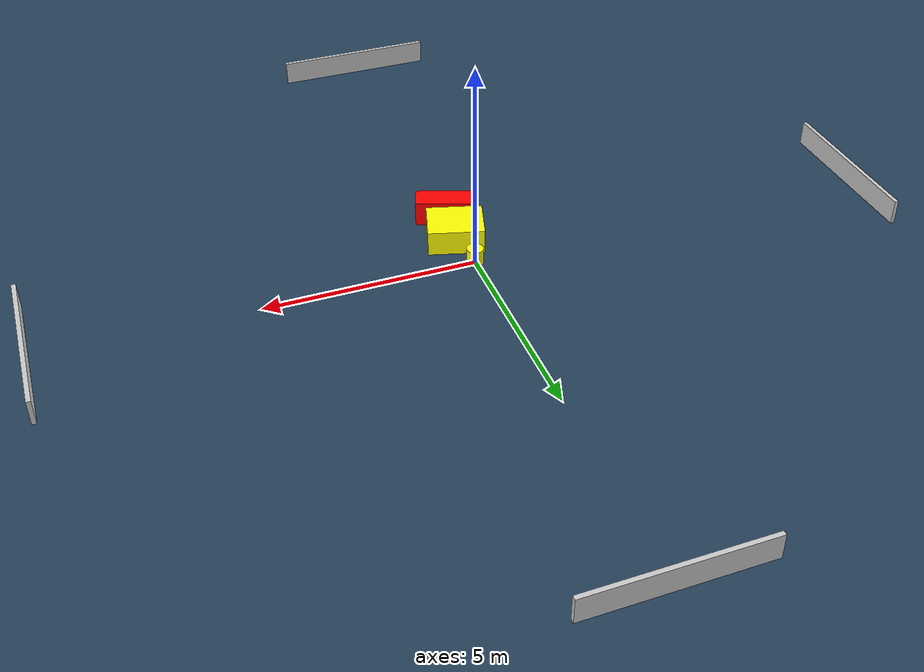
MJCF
<?xml version="1.0" ?>
<mujoco model="generated_environment">
  <option timestep="0.01" integrator="RK4" cone="elliptic"/>
  <default>
    <geom density="1"/>
  </default>
  <asset>
    <texture builtin="gradient" height="3072" name="skybox" rgb1="0.3 0.5 0.7" rgb2="0 0 0" type="skybox" width="512"/>
    <texture builtin="checker" height="300" name="groundplane" rgb1="0.2 0.3 0.4" rgb2="0.1 0.2 0.3" type="2d" width="300"/>
    <material name="groundplane" reflectance="0.2" texrepeat="5 5" texture="groundplane"/>
  </asset>
  <worldbody>
    <light dir="0 0 -1" directional="true" pos="0 0 1.5"/>
    <geom condim="3" friction="0.5 0.005 0.001" material="groundplane" name="floor" pos="0 0 0" size="0 0 0.05" type="plane"/>
    <body name="walls">
      <geom name="wall_1" condim="4" pos="-10.0 0.0 0.3" rgba="0.800000011920929 0.800000011920929 0.800000011920929 1.0" size="0.05 2.0 0.3" type="box"/>
      <geom name="wall_2" condim="4" pos="10.0 0.0 0.3" rgba="0.800000011920929 0.800000011920929 0.800000011920929 1.0" size="0.05 2.0 0.3" type="box"/>
      <geom name="wall_3" condim="4" pos="0.0 -10.0 0.3" rgba="0.800000011920929 0.800000011920929 0.800000011920929 1.0" size="2.0 0.05 0.3" type="box"/>
      <geom name="wall_4" condim="4" pos="0.0 10.0 0.3" rgba="0.800000011920929 0.800000011920929 0.800000011920929 1.0" size="2.0 0.05 0.3" type="box"/>
    </body>
    <body name="robot">
      <joint name="joint_x" type="slide" pos="0 0 0" axis="1 0 0"/>
      <joint name="joint_y" type="slide" pos="0 0 0" axis="0 1 0"/>
      <geom name="robot" type="cylinder" pos="0.0 0.0 0.2" size="0.2 0.2 0.0" mass="5.0" friction="1.0 0.005 0.0001" condim="4" rgba="1.0 1.0 0.0 1.0"/>
    </body>
    <body name="obstacle_1_movable">
      <geom name="obstacle_1_movable" condim="4" pos="0.12992651196456415 -0.9832158409769646 0.3" euler="0 0 343.67076533621696" friction="0.0 0.005 0.001" rgba="1.0 1.0 0.0 1.0" size="0.6627980107415454 0.5400011962657527 0.3" type="box" mass="0.1"/>
      <joint type="free"/>
    </body>
    <body name="obstacle_2_static">
      <geom name="obstacle_2_static" condim="4" pos="0.04781825611561052 -1.9516617093819553 0.3" euler="0 0 340.26029534739286" friction="0.0 0.005 0.001" rgba="1.0 0.0 0.0 1.0" size="0.7035984487914304 0.2834576609972802 0.3" type="box"/>
    </body>
  </worldbody>
  <actuator>
    <motor name="actuator_x" joint="joint_x" gear="1" ctrlrange="-1 1"/>
    <motor name="actuator_y" joint="joint_y" gear="1" ctrlrange="-1 1"/>
  </actuator>
</mujoco>
